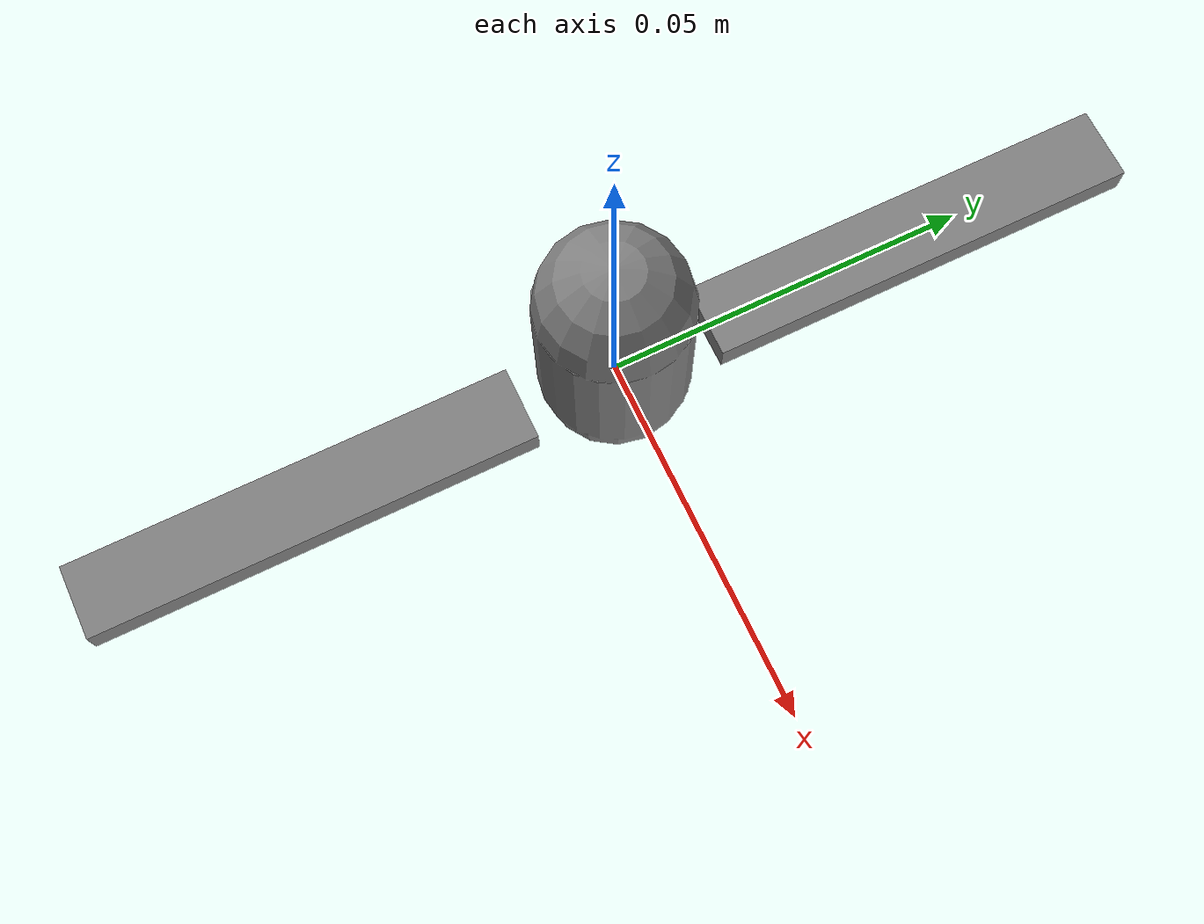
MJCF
<mujoco model="simple_gripper">
  <default>
    <joint armature="0.1" damping="0.2" limited="true"/>
    </default>
  <worldbody>
    <body name="worldBody" pos="0 0 0">
      <geom name="base_geom" type="capsule" size="0.01" fromto="0 0 0 0 0 0.02"/>
      <body name="finger_left" pos="0 0.003 0">
        <joint name="joint_left" type="hinge" axis="-1 0 0" range="0 90"/>
        <geom name="finger_left_geom" type="box" pos="0 0.04 0" size="0.005 0.03 0.002"/>
      </body>
      <body name="finger_right" pos="0 -0.003 0">
        <joint name="joint_right" type="hinge" axis="1 0 0" range="0 90"/>
        <geom name="finger_right_geom" type="box" pos="0 -0.04 0" size="0.005 0.03 0.002"/>
      </body>
    </body>
  </worldbody>
  <actuator>
    <position name="act_left" joint="joint_left" ctrlrange="0 1.57"/>
    <position name="act_right" joint="joint_right" ctrlrange="0 1.57"/>
  </actuator>
</mujoco>
